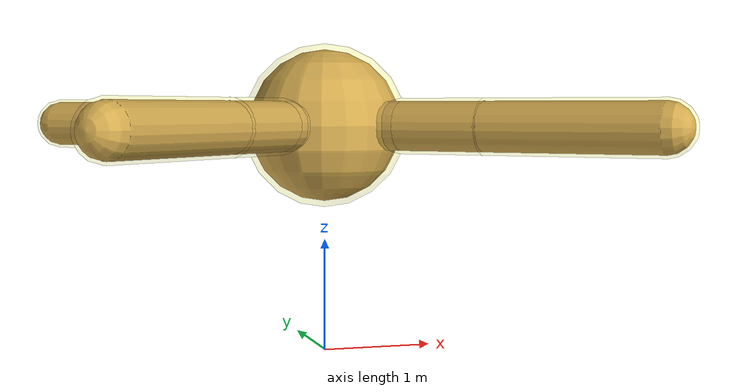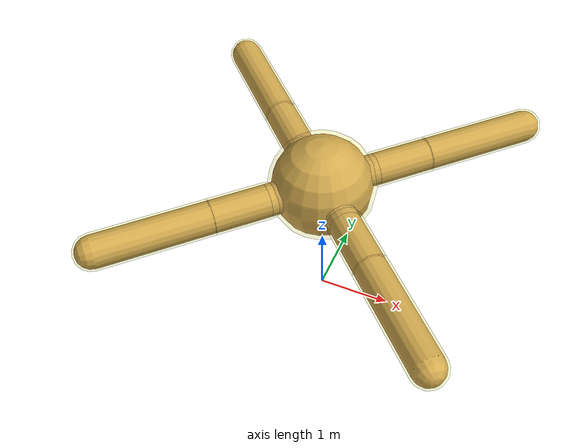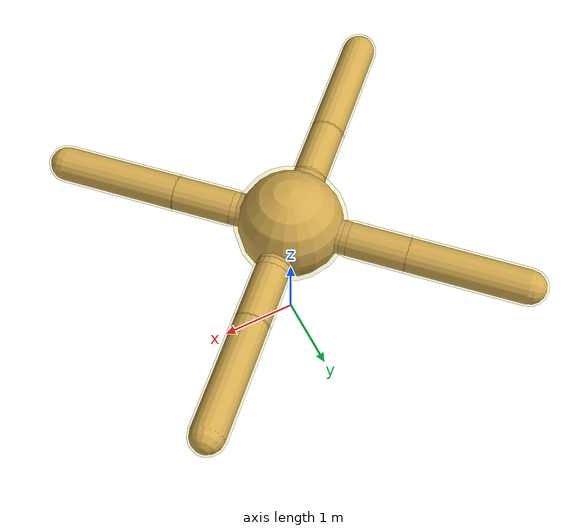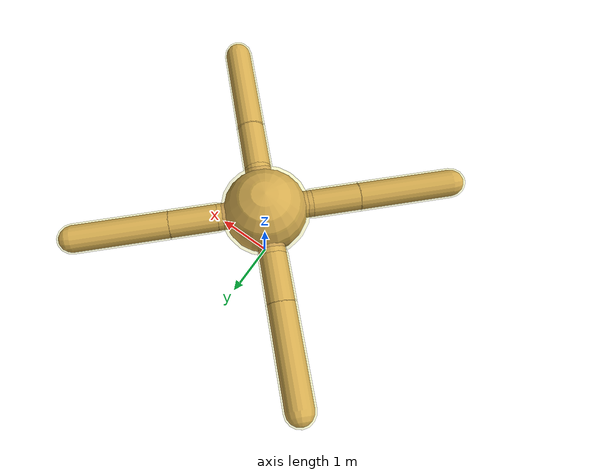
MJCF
<mujoco model="ant_x2.7">
    <compiler angle="degree" />
    <default>
        <motor ctrlrange="-1.0 1.0" ctrllimited="true" gear="4125" />
        <geom friction="1 0.5 0.5" solref=".02 1" solimp="0 .8 .01" material="self" density="6.98572" />
        <joint limited="true" armature="74.25" damping="74.25" solreflimit=".04 1" solimplimit="0 .8 .03" />
    </default>
    <asset>
        <material name="self" rgba=".8 .6 .4 1" />
    </asset>

    <worldbody>
        <body name="seg0" pos="0 0 2.025">
            <camera name="floating" pos="-5.697 0 2.835" xyaxes="0 -1 0 .5 0 1" mode="trackcom" fovy="70" />
            <camera name="egocentric" pos="0.81 0 0.297" xyaxes="0 -1 0 0 0 1" fovy="90" />
            <geom name="seg0_geom" type="sphere" pos="0 0 0" size="0.675" />
            <!-- hip stubs, fused (see header) -->
            <geom name="seg0_stub1" type="capsule" fromto="0 0 0 0.54 0.54 0" size="0.216" />
            <geom name="seg0_stub2" type="capsule" fromto="0 0 0 -0.54 0.54 0" size="0.216" />
            <geom name="seg0_stub3" type="capsule" fromto="0 0 0 -0.54 -0.54 0" size="0.216" />
            <geom name="seg0_stub4" type="capsule" fromto="0 0 0 0.54 -0.54 0" size="0.216" />
            <site name="seg0_site" type="sphere" pos="0 0 0" size="0.729" rgba="1 1 0 0.15" />

            <!-- leg 1: +x +y -->
            <body name="seg1" pos="0.54 0.54 0">
                <joint name="seg0_to_1" type="hinge" axis="0 0 1" pos="0 0 0" range="-30 30" />
                <geom name="seg1_geom" type="capsule" fromto="0 0 0 0.54 0.54 0" size="0.216" />
                <site name="seg1_site" type="capsule" fromto="0 0 0 0.54 0.54 0" size="0.243" rgba="1 1 0 0.15" />
                <body name="seg5" pos="0.54 0.54 0">
                    <joint name="seg1_to_5" type="hinge" axis="-1 1 0" pos="0 0 0" range="30 70" />
                    <geom name="seg5_geom" type="capsule" fromto="0 0 0 1.08 1.08 0" size="0.216" />
                    <site name="seg5_site" type="capsule" fromto="0 0 0 1.08 1.08 0" size="0.243" rgba="1 1 0 0.15" />
                </body>
            </body>

            <!-- leg 2: -x +y -->
            <body name="seg2" pos="-0.54 0.54 0">
                <joint name="seg0_to_2" type="hinge" axis="0 0 1" pos="0 0 0" range="-30 30" />
                <geom name="seg2_geom" type="capsule" fromto="0 0 0 -0.54 0.54 0" size="0.216" />
                <site name="seg2_site" type="capsule" fromto="0 0 0 -0.54 0.54 0" size="0.243" rgba="1 1 0 0.15" />
                <body name="seg6" pos="-0.54 0.54 0">
                    <joint name="seg2_to_6" type="hinge" axis="1 1 0" pos="0 0 0" range="-70 -30" />
                    <geom name="seg6_geom" type="capsule" fromto="0 0 0 -1.08 1.08 0" size="0.216" />
                    <site name="seg6_site" type="capsule" fromto="0 0 0 -1.08 1.08 0" size="0.243" rgba="1 1 0 0.15" />
                </body>
            </body>

            <!-- leg 3: -x -y -->
            <body name="seg3" pos="-0.54 -0.54 0">
                <joint name="seg0_to_3" type="hinge" axis="0 0 1" pos="0 0 0" range="-30 30" />
                <geom name="seg3_geom" type="capsule" fromto="0 0 0 -0.54 -0.54 0" size="0.216" />
                <site name="seg3_site" type="capsule" fromto="0 0 0 -0.54 -0.54 0" size="0.243" rgba="1 1 0 0.15" />
                <body name="seg7" pos="-0.54 -0.54 0">
                    <joint name="seg3_to_7" type="hinge" axis="-1 1 0" pos="0 0 0" range="-70 -30" />
                    <geom name="seg7_geom" type="capsule" fromto="0 0 0 -1.08 -1.08 0" size="0.216" />
                    <site name="seg7_site" type="capsule" fromto="0 0 0 -1.08 -1.08 0" size="0.243" rgba="1 1 0 0.15" />
                </body>
            </body>

            <!-- leg 4: +x -y -->
            <body name="seg4" pos="0.54 -0.54 0">
                <joint name="seg0_to_4" type="hinge" axis="0 0 1" pos="0 0 0" range="-30 30" />
                <geom name="seg4_geom" type="capsule" fromto="0 0 0 0.54 -0.54 0" size="0.216" />
                <site name="seg4_site" type="capsule" fromto="0 0 0 0.54 -0.54 0" size="0.243" rgba="1 1 0 0.15" />
                <body name="seg8" pos="0.54 -0.54 0">
                    <joint name="seg4_to_8" type="hinge" axis="1 1 0" pos="0 0 0" range="30 70" />
                    <geom name="seg8_geom" type="capsule" fromto="0 0 0 1.08 -1.08 0" size="0.216" />
                    <site name="seg8_site" type="capsule" fromto="0 0 0 1.08 -1.08 0" size="0.243" rgba="1 1 0 0.15" />
                </body>
            </body>
        </body>
    </worldbody>

    <actuator>
        <motor name="motor0_to_1" joint="seg0_to_1" />
        <motor name="motor1_to_5" joint="seg1_to_5" />
        <motor name="motor0_to_2" joint="seg0_to_2" />
        <motor name="motor2_to_6" joint="seg2_to_6" />
        <motor name="motor0_to_3" joint="seg0_to_3" />
        <motor name="motor3_to_7" joint="seg3_to_7" />
        <motor name="motor0_to_4" joint="seg0_to_4" />
        <motor name="motor4_to_8" joint="seg4_to_8" />
    </actuator>

    <sensor>
        <touch name="seg0_touch" site="seg0_site" />
        <touch name="seg1_touch" site="seg1_site" />
        <touch name="seg2_touch" site="seg2_site" />
        <touch name="seg3_touch" site="seg3_site" />
        <touch name="seg4_touch" site="seg4_site" />
        <touch name="seg5_touch" site="seg5_site" />
        <touch name="seg6_touch" site="seg6_site" />
        <touch name="seg7_touch" site="seg7_site" />
        <touch name="seg8_touch" site="seg8_site" />
        <velocimeter name="torso_vel" site="seg0_site" />
        <gyro name="torso_gyro" site="seg0_site" />
        <accelerometer name="torso_accel" site="seg0_site" />
    </sensor>
</mujoco>
